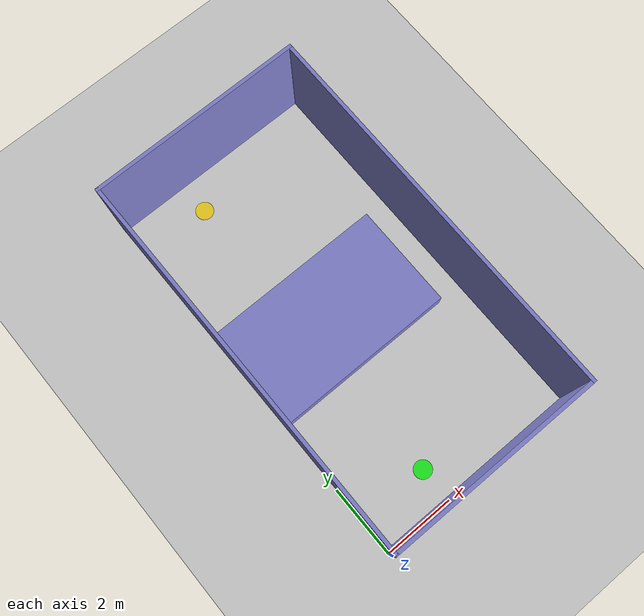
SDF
<?xml version="1.0" ?>
<!-- 틈 0.70 m — 지상 가능하지만 비행이 유리 (base_map_h0.5 파생, 2026-10-05) -->
<sdf version="1.9">
  <world name="base_map_h0.5">
    <physics name="1ms" type="ignored">
      <max_step_size>0.001</max_step_size>
      <real_time_factor>1.0</real_time_factor>
    </physics>
    <plugin filename="gz-sim-physics-system" name="gz::sim::systems::Physics"/>
    <plugin filename="gz-sim-user-commands-system" name="gz::sim::systems::UserCommands"/>
    <plugin filename="gz-sim-scene-broadcaster-system" name="gz::sim::systems::SceneBroadcaster"/>
    <plugin filename="gz-sim-sensors-system" name="gz::sim::systems::Sensors">
      <render_engine>ogre</render_engine>
    </plugin>

    <light type="directional" name="sun">
      <cast_shadows>true</cast_shadows>
      <pose>0 0 10 0 0 0</pose>
      <diffuse>0.8 0.8 0.8 1</diffuse>
      <specular>0.2 0.2 0.2 1</specular>
      <direction>-0.5 0.1 -0.9</direction>
    </light>

    <model name="ground_plane">
      <static>true</static>
      <link name="link">
        <collision name="collision">
          <geometry><plane><normal>0 0 1</normal><size>100 100</size></plane></geometry>
        </collision>
        <visual name="visual">
          <geometry><plane><normal>0 0 1</normal><size>100 100</size></plane></geometry>
          <material>
            <ambient>0.8 0.8 0.8 1</ambient>
            <diffuse>0.8 0.8 0.8 1</diffuse>
          </material>
        </visual>
      </link>
    </model>

    <model name="obstacle_0">
      <static>true</static>
      <pose>3.0 0.05 1.5 0 0 0</pose>
      <link name="link">
        <collision name="collision">
          <geometry><box><size>6.0 0.1 3.0</size></box></geometry>
        </collision>
        <visual name="visual">
          <geometry><box><size>6.0 0.1 3.0</size></box></geometry>
          <material>
            <ambient>0.5 0.5 0.8 1</ambient>
            <diffuse>0.5 0.5 0.8 1</diffuse>
          </material>
        </visual>
      </link>
    </model>
    <model name="obstacle_1">
      <static>true</static>
      <pose>3.0 10.95 1.5 0 0 0</pose>
      <link name="link">
        <collision name="collision">
          <geometry><box><size>6.0 0.1 3.0</size></box></geometry>
        </collision>
        <visual name="visual">
          <geometry><box><size>6.0 0.1 3.0</size></box></geometry>
          <material>
            <ambient>0.5 0.5 0.8 1</ambient>
            <diffuse>0.5 0.5 0.8 1</diffuse>
          </material>
        </visual>
      </link>
    </model>
    <model name="obstacle_2">
      <static>true</static>
      <pose>0.05 5.5 1.5 0 0 0</pose>
      <link name="link">
        <collision name="collision">
          <geometry><box><size>0.1 11.0 3.0</size></box></geometry>
        </collision>
        <visual name="visual">
          <geometry><box><size>0.1 11.0 3.0</size></box></geometry>
          <material>
            <ambient>0.5 0.5 0.8 1</ambient>
            <diffuse>0.5 0.5 0.8 1</diffuse>
          </material>
        </visual>
      </link>
    </model>
    <model name="obstacle_3">
      <static>true</static>
      <pose>5.95 5.5 1.5 0 0 0</pose>
      <link name="link">
        <collision name="collision">
          <geometry><box><size>0.1 11.0 3.0</size></box></geometry>
        </collision>
        <visual name="visual">
          <geometry><box><size>0.1 11.0 3.0</size></box></geometry>
          <material>
            <ambient>0.5 0.5 0.8 1</ambient>
            <diffuse>0.5 0.5 0.8 1</diffuse>
          </material>
        </visual>
      </link>
    </model>
    <model name="obstacle_4">
      <static>true</static>
      <pose>2.6 5.5 0.25 0 0 0</pose>
      <link name="link">
        <collision name="collision">
          <geometry><box><size>5.2 3.0 0.5</size></box></geometry>
        </collision>
        <visual name="visual">
          <geometry><box><size>5.2 3.0 0.5</size></box></geometry>
          <material>
            <ambient>0.5 0.5 0.8 1</ambient>
            <diffuse>0.5 0.5 0.8 1</diffuse>
          </material>
        </visual>
      </link>
    </model>

    <model name="start_marker">
      <static>true</static>
      <pose>2.0 1.0 0.02 0 0 0</pose>
      <link name="link">
        <visual name="visual">
          <geometry><cylinder><radius>0.25</radius><length>0.04</length></cylinder></geometry>
          <material>
            <ambient>0.0 1.0 0.0 1.0</ambient>
            <diffuse>0.0 1.0 0.0 1.0</diffuse>
            <emissive>0.0 0.3 0.0 1</emissive>
          </material>
          <transparency>0.2</transparency>
        </visual>
      </link>
    </model>
    <model name="goal_marker">
      <static>true</static>
      <pose>2.0 10.0 0.02 0 0 0</pose>
      <link name="link">
        <visual name="visual">
          <geometry><cylinder><radius>0.25</radius><length>0.04</length></cylinder></geometry>
          <material>
            <ambient>1.0 0.85 0.0 1.0</ambient>
            <diffuse>1.0 0.85 0.0 1.0</diffuse>
            <emissive>0.3 0.255 0.0 1</emissive>
          </material>
          <transparency>0.2</transparency>
        </visual>
      </link>
    </model>
  </world>
</sdf>
